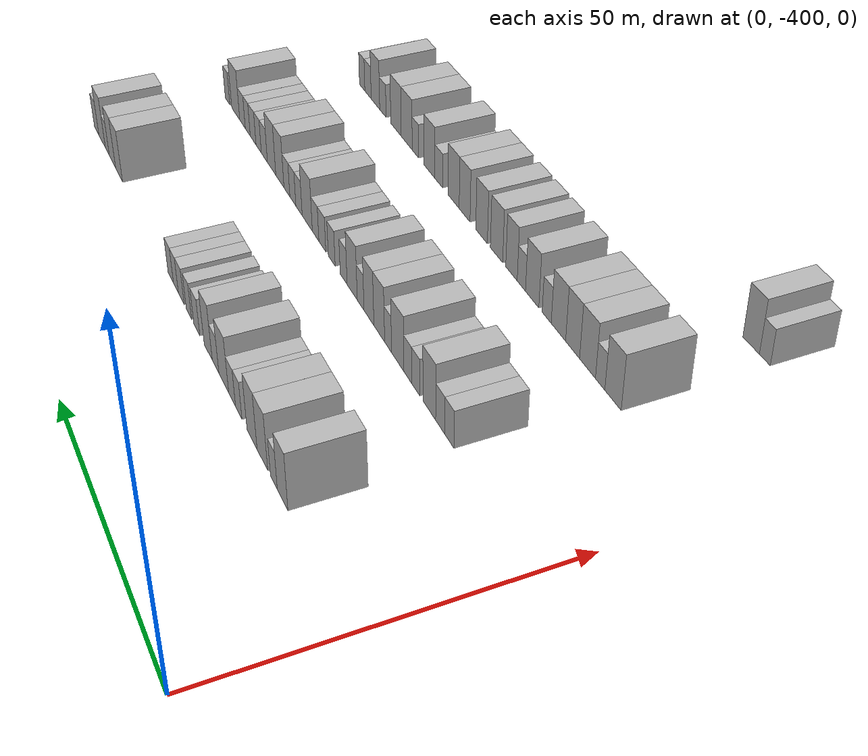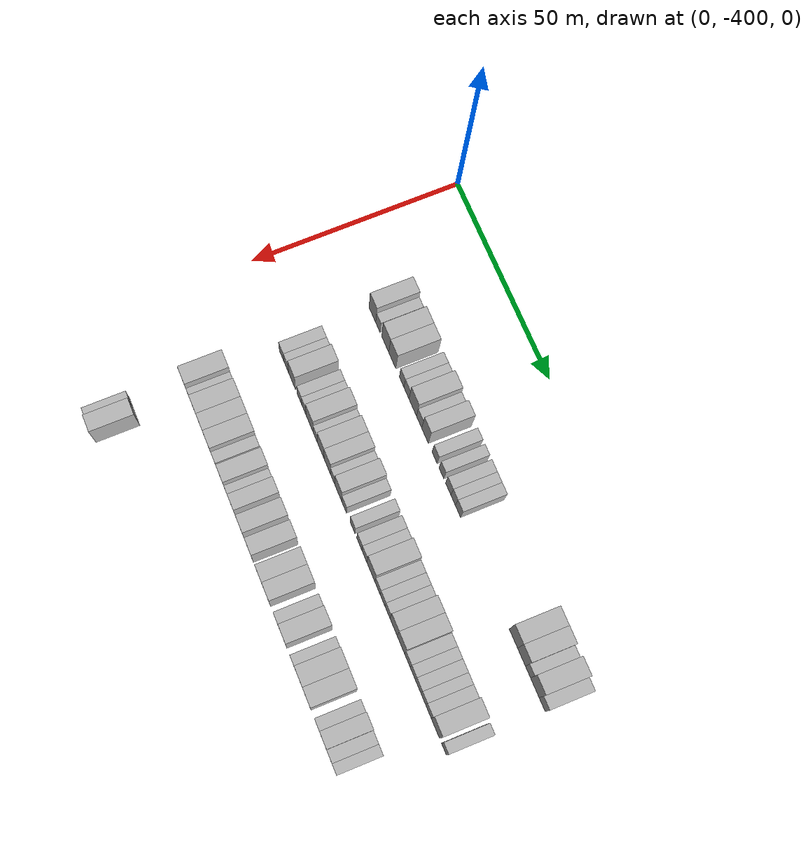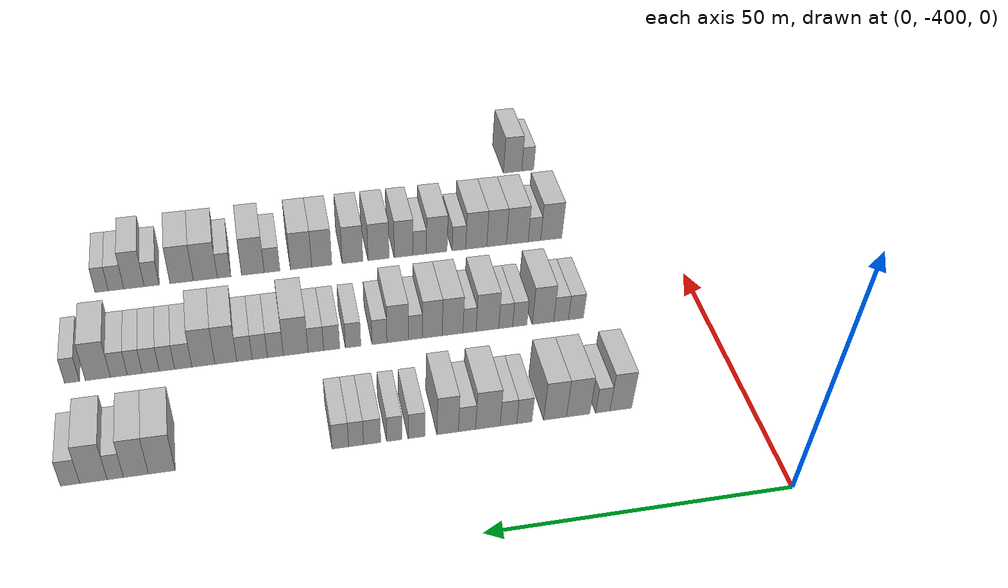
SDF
<sdf version="1.6">
 <world name="default">
  <model name="building_1">
   <static>1</static>
   <pose>25.0000 -378.1050 0 0.000000 0.000000 0.000000</pose>
   <link name="link">
    <pose>0 0 4.50 0 0 0</pose>
    <collision name="collision"><geometry><box><size>10.0000 3.7900 9.0000</size></box></geometry></collision>
    <visual name="visual">
     <cast_shadows>0</cast_shadows>
     <geometry><box><size>10.0000 3.7900 9.0000</size></box></geometry>
     <material>
      <script>
       <uri>model://HANNAS_wall/materials/scripts</uri>
       <uri>model://HANNAS_wall/materials/textures</uri>
       <name>vrc/HANNAS_wall</name>
      </script>
     </material>
    </visual>
   </link>
  </model>
  <model name="building_2">
   <static>1</static>
   <pose>25.0000 -374.9689 0 0.000000 0.000000 0.000000</pose>
   <link name="link">
    <pose>0 0 3.00 0 0 0</pose>
    <collision name="collision"><geometry><box><size>10.0000 2.4822 6.0000</size></box></geometry></collision>
    <visual name="visual">
     <cast_shadows>0</cast_shadows>
     <geometry><box><size>10.0000 2.4822 6.0000</size></box></geometry>
     <material>
      <script>
       <uri>model://HANNAS_wall/materials/scripts</uri>
       <uri>model://HANNAS_wall/materials/textures</uri>
       <name>vrc/HANNAS_wall</name>
      </script>
     </material>
    </visual>
   </link>
  </model>
  <model name="building_3">
   <static>1</static>
   <pose>25.0000 -370.7063 0 0.000000 0.000000 0.000000</pose>
   <link name="link">
    <pose>0 0 4.50 0 0 0</pose>
    <collision name="collision"><geometry><box><size>10.0000 4.0431 9.0000</size></box></geometry></collision>
    <visual name="visual">
     <cast_shadows>0</cast_shadows>
     <geometry><box><size>10.0000 4.0431 9.0000</size></box></geometry>
     <material>
      <script>
       <uri>model://HANNAS_wall/materials/scripts</uri>
       <uri>model://HANNAS_wall/materials/textures</uri>
       <name>vrc/HANNAS_wall</name>
      </script>
     </material>
    </visual>
   </link>
  </model>
  <model name="building_4">
   <static>1</static>
   <pose>25.0000 -366.7180 0 0.000000 0.000000 0.000000</pose>
   <link name="link">
    <pose>0 0 4.50 0 0 0</pose>
    <collision name="collision"><geometry><box><size>10.0000 3.9334 9.0000</size></box></geometry></collision>
    <visual name="visual">
     <cast_shadows>0</cast_shadows>
     <geometry><box><size>10.0000 3.9334 9.0000</size></box></geometry>
     <material>
      <script>
       <uri>model://HANNAS_wall/materials/scripts</uri>
       <uri>model://HANNAS_wall/materials/textures</uri>
       <name>vrc/HANNAS_wall</name>
      </script>
     </material>
    </visual>
   </link>
  </model>
  <model name="building_5">
   <static>1</static>
   <pose>25.0000 -361.4553 0 0.000000 0.000000 0.000000</pose>
   <link name="link">
    <pose>0 0 3.00 0 0 0</pose>
    <collision name="collision"><geometry><box><size>10.0000 2.5922 6.0000</size></box></geometry></collision>
    <visual name="visual">
     <cast_shadows>0</cast_shadows>
     <geometry><box><size>10.0000 2.5922 6.0000</size></box></geometry>
     <material>
      <script>
       <uri>model://HANNAS_wall/materials/scripts</uri>
       <uri>model://HANNAS_wall/materials/textures</uri>
       <name>vrc/HANNAS_wall</name>
      </script>
     </material>
    </visual>
   </link>
  </model>
  <model name="building_6">
   <static>1</static>
   <pose>25.0000 -358.7461 0 0.000000 0.000000 0.000000</pose>
   <link name="link">
    <pose>0 0 3.00 0 0 0</pose>
    <collision name="collision"><geometry><box><size>10.0000 2.8261 6.0000</size></box></geometry></collision>
    <visual name="visual">
     <cast_shadows>0</cast_shadows>
     <geometry><box><size>10.0000 2.8261 6.0000</size></box></geometry>
     <material>
      <script>
       <uri>model://HANNAS_wall/materials/scripts</uri>
       <uri>model://HANNAS_wall/materials/textures</uri>
       <name>vrc/HANNAS_wall</name>
      </script>
     </material>
    </visual>
   </link>
  </model>
  <model name="building_7">
   <static>1</static>
   <pose>25.0000 -355.2564 0 0.000000 0.000000 0.000000</pose>
   <link name="link">
    <pose>0 0 4.50 0 0 0</pose>
    <collision name="collision"><geometry><box><size>10.0000 4.1533 9.0000</size></box></geometry></collision>
    <visual name="visual">
     <cast_shadows>0</cast_shadows>
     <geometry><box><size>10.0000 4.1533 9.0000</size></box></geometry>
     <material>
      <script>
       <uri>model://HANNAS_wall/materials/scripts</uri>
       <uri>model://HANNAS_wall/materials/textures</uri>
       <name>vrc/HANNAS_wall</name>
      </script>
     </material>
    </visual>
   </link>
  </model>
  <model name="building_8">
   <static>1</static>
   <pose>25.0000 -351.7290 0 0.000000 0.000000 0.000000</pose>
   <link name="link">
    <pose>0 0 3.00 0 0 0</pose>
    <collision name="collision"><geometry><box><size>10.0000 2.9015 6.0000</size></box></geometry></collision>
    <visual name="visual">
     <cast_shadows>0</cast_shadows>
     <geometry><box><size>10.0000 2.9015 6.0000</size></box></geometry>
     <material>
      <script>
       <uri>model://HANNAS_wall/materials/scripts</uri>
       <uri>model://HANNAS_wall/materials/textures</uri>
       <name>vrc/HANNAS_wall</name>
      </script>
     </material>
    </visual>
   </link>
  </model>
  <model name="building_9">
   <static>1</static>
   <pose>25.0000 -348.4734 0 0.000000 0.000000 0.000000</pose>
   <link name="link">
    <pose>0 0 4.50 0 0 0</pose>
    <collision name="collision"><geometry><box><size>10.0000 3.6097 9.0000</size></box></geometry></collision>
    <visual name="visual">
     <cast_shadows>0</cast_shadows>
     <geometry><box><size>10.0000 3.6097 9.0000</size></box></geometry>
     <material>
      <script>
       <uri>model://HANNAS_wall/materials/scripts</uri>
       <uri>model://HANNAS_wall/materials/textures</uri>
       <name>vrc/HANNAS_wall</name>
      </script>
     </material>
    </visual>
   </link>
  </model>
  <model name="building_10">
   <static>1</static>
   <pose>25.0000 -343.2628 0 0.000000 0.000000 0.000000</pose>
   <link name="link">
    <pose>0 0 3.00 0 0 0</pose>
    <collision name="collision"><geometry><box><size>10.0000 2.8115 6.0000</size></box></geometry></collision>
    <visual name="visual">
     <cast_shadows>0</cast_shadows>
     <geometry><box><size>10.0000 2.8115 6.0000</size></box></geometry>
     <material>
      <script>
       <uri>model://HANNAS_wall/materials/scripts</uri>
       <uri>model://HANNAS_wall/materials/textures</uri>
       <name>vrc/HANNAS_wall</name>
      </script>
     </material>
    </visual>
   </link>
  </model>
  <model name="building_11">
   <static>1</static>
   <pose>25.0000 -339.5802 0 0.000000 0.000000 0.000000</pose>
   <link name="link">
    <pose>0 0 3.00 0 0 0</pose>
    <collision name="collision"><geometry><box><size>10.0000 2.5537 6.0000</size></box></geometry></collision>
    <visual name="visual">
     <cast_shadows>0</cast_shadows>
     <geometry><box><size>10.0000 2.5537 6.0000</size></box></geometry>
     <material>
      <script>
       <uri>model://HANNAS_wall/materials/scripts</uri>
       <uri>model://HANNAS_wall/materials/textures</uri>
       <name>vrc/HANNAS_wall</name>
      </script>
     </material>
    </visual>
   </link>
  </model>
  <model name="building_12">
   <static>1</static>
   <pose>25.0000 -335.8862 0 0.000000 0.000000 0.000000</pose>
   <link name="link">
    <pose>0 0 3.00 0 0 0</pose>
    <collision name="collision"><geometry><box><size>10.0000 2.8342 6.0000</size></box></geometry></collision>
    <visual name="visual">
     <cast_shadows>0</cast_shadows>
     <geometry><box><size>10.0000 2.8342 6.0000</size></box></geometry>
     <material>
      <script>
       <uri>model://HANNAS_wall/materials/scripts</uri>
       <uri>model://HANNAS_wall/materials/textures</uri>
       <name>vrc/HANNAS_wall</name>
      </script>
     </material>
    </visual>
   </link>
  </model>
  <model name="building_13">
   <static>1</static>
   <pose>25.0000 -333.2497 0 0.000000 0.000000 0.000000</pose>
   <link name="link">
    <pose>0 0 3.00 0 0 0</pose>
    <collision name="collision"><geometry><box><size>10.0000 2.4389 6.0000</size></box></geometry></collision>
    <visual name="visual">
     <cast_shadows>0</cast_shadows>
     <geometry><box><size>10.0000 2.4389 6.0000</size></box></geometry>
     <material>
      <script>
       <uri>model://HANNAS_wall/materials/scripts</uri>
       <uri>model://HANNAS_wall/materials/textures</uri>
       <name>vrc/HANNAS_wall</name>
      </script>
     </material>
    </visual>
   </link>
  </model>
  <model name="building_14">
   <static>1</static>
   <pose>25.0000 -330.6634 0 0.000000 0.000000 0.000000</pose>
   <link name="link">
    <pose>0 0 3.00 0 0 0</pose>
    <collision name="collision"><geometry><box><size>10.0000 2.7336 6.0000</size></box></geometry></collision>
    <visual name="visual">
     <cast_shadows>0</cast_shadows>
     <geometry><box><size>10.0000 2.7336 6.0000</size></box></geometry>
     <material>
      <script>
       <uri>model://HANNAS_wall/materials/scripts</uri>
       <uri>model://HANNAS_wall/materials/textures</uri>
       <name>vrc/HANNAS_wall</name>
      </script>
     </material>
    </visual>
   </link>
  </model>
  <model name="building_15">
   <static>1</static>
   <pose>25.0000 -301.9476 0 0.000000 0.000000 0.000000</pose>
   <link name="link">
    <pose>0 0 4.50 0 0 0</pose>
    <collision name="collision"><geometry><box><size>10.0000 4.2327 9.0000</size></box></geometry></collision>
    <visual name="visual">
     <cast_shadows>0</cast_shadows>
     <geometry><box><size>10.0000 4.2327 9.0000</size></box></geometry>
     <material>
      <script>
       <uri>model://HANNAS_wall/materials/scripts</uri>
       <uri>model://HANNAS_wall/materials/textures</uri>
       <name>vrc/HANNAS_wall</name>
      </script>
     </material>
    </visual>
   </link>
  </model>
  <model name="building_16">
   <static>1</static>
   <pose>25.0000 -297.8743 0 0.000000 0.000000 0.000000</pose>
   <link name="link">
    <pose>0 0 4.50 0 0 0</pose>
    <collision name="collision"><geometry><box><size>10.0000 3.9139 9.0000</size></box></geometry></collision>
    <visual name="visual">
     <cast_shadows>0</cast_shadows>
     <geometry><box><size>10.0000 3.9139 9.0000</size></box></geometry>
     <material>
      <script>
       <uri>model://HANNAS_wall/materials/scripts</uri>
       <uri>model://HANNAS_wall/materials/textures</uri>
       <name>vrc/HANNAS_wall</name>
      </script>
     </material>
    </visual>
   </link>
  </model>
  <model name="building_17">
   <static>1</static>
   <pose>25.0000 -294.6431 0 0.000000 0.000000 0.000000</pose>
   <link name="link">
    <pose>0 0 3.00 0 0 0</pose>
    <collision name="collision"><geometry><box><size>10.0000 2.5486 6.0000</size></box></geometry></collision>
    <visual name="visual">
     <cast_shadows>0</cast_shadows>
     <geometry><box><size>10.0000 2.5486 6.0000</size></box></geometry>
     <material>
      <script>
       <uri>model://HANNAS_wall/materials/scripts</uri>
       <uri>model://HANNAS_wall/materials/textures</uri>
       <name>vrc/HANNAS_wall</name>
      </script>
     </material>
    </visual>
   </link>
  </model>
  <model name="building_18">
   <static>1</static>
   <pose>25.0000 -291.2424 0 0.000000 0.000000 0.000000</pose>
   <link name="link">
    <pose>0 0 4.50 0 0 0</pose>
    <collision name="collision"><geometry><box><size>10.0000 4.2528 9.0000</size></box></geometry></collision>
    <visual name="visual">
     <cast_shadows>0</cast_shadows>
     <geometry><box><size>10.0000 4.2528 9.0000</size></box></geometry>
     <material>
      <script>
       <uri>model://HANNAS_wall/materials/scripts</uri>
       <uri>model://HANNAS_wall/materials/textures</uri>
       <name>vrc/HANNAS_wall</name>
      </script>
     </material>
    </visual>
   </link>
  </model>
  <model name="building_19">
   <static>1</static>
   <pose>25.0000 -287.6211 0 0.000000 0.000000 0.000000</pose>
   <link name="link">
    <pose>0 0 3.00 0 0 0</pose>
    <collision name="collision"><geometry><box><size>10.0000 2.9899 6.0000</size></box></geometry></collision>
    <visual name="visual">
     <cast_shadows>0</cast_shadows>
     <geometry><box><size>10.0000 2.9899 6.0000</size></box></geometry>
     <material>
      <script>
       <uri>model://HANNAS_wall/materials/scripts</uri>
       <uri>model://HANNAS_wall/materials/textures</uri>
       <name>vrc/HANNAS_wall</name>
      </script>
     </material>
    </visual>
   </link>
  </model>
  <model name="building_183">
   <static>1</static>
   <pose>47.0000 -376.5929 0 0.000000 0.000000 0.000000</pose>
   <link name="link">
    <pose>0 0 3.00 0 0 0</pose>
    <collision name="collision"><geometry><box><size>10.0000 2.8141 6.0000</size></box></geometry></collision>
    <visual name="visual">
     <cast_shadows>0</cast_shadows>
     <geometry><box><size>10.0000 2.8141 6.0000</size></box></geometry>
     <material>
      <script>
       <uri>model://HANNAS_wall/materials/scripts</uri>
       <uri>model://HANNAS_wall/materials/textures</uri>
       <name>vrc/HANNAS_wall</name>
      </script>
     </material>
    </visual>
   </link>
  </model>
  <model name="building_184">
   <static>1</static>
   <pose>47.0000 -373.8122 0 0.000000 0.000000 0.000000</pose>
   <link name="link">
    <pose>0 0 3.00 0 0 0</pose>
    <collision name="collision"><geometry><box><size>10.0000 2.7474 6.0000</size></box></geometry></collision>
    <visual name="visual">
     <cast_shadows>0</cast_shadows>
     <geometry><box><size>10.0000 2.7474 6.0000</size></box></geometry>
     <material>
      <script>
       <uri>model://HANNAS_wall/materials/scripts</uri>
       <uri>model://HANNAS_wall/materials/textures</uri>
       <name>vrc/HANNAS_wall</name>
      </script>
     </material>
    </visual>
   </link>
  </model>
  <model name="building_185">
   <static>1</static>
   <pose>47.0000 -370.4406 0 0.000000 0.000000 0.000000</pose>
   <link name="link">
    <pose>0 0 4.50 0 0 0</pose>
    <collision name="collision"><geometry><box><size>10.0000 3.9957 9.0000</size></box></geometry></collision>
    <visual name="visual">
     <cast_shadows>0</cast_shadows>
     <geometry><box><size>10.0000 3.9957 9.0000</size></box></geometry>
     <material>
      <script>
       <uri>model://HANNAS_wall/materials/scripts</uri>
       <uri>model://HANNAS_wall/materials/textures</uri>
       <name>vrc/HANNAS_wall</name>
      </script>
     </material>
    </visual>
   </link>
  </model>
  <model name="building_186">
   <static>1</static>
   <pose>47.0000 -366.1176 0 0.000000 0.000000 0.000000</pose>
   <link name="link">
    <pose>0 0 3.00 0 0 0</pose>
    <collision name="collision"><geometry><box><size>10.0000 2.6503 6.0000</size></box></geometry></collision>
    <visual name="visual">
     <cast_shadows>0</cast_shadows>
     <geometry><box><size>10.0000 2.6503 6.0000</size></box></geometry>
     <material>
      <script>
       <uri>model://HANNAS_wall/materials/scripts</uri>
       <uri>model://HANNAS_wall/materials/textures</uri>
       <name>vrc/HANNAS_wall</name>
      </script>
     </material>
    </visual>
   </link>
  </model>
  <model name="building_187">
   <static>1</static>
   <pose>47.0000 -363.5154 0 0.000000 0.000000 0.000000</pose>
   <link name="link">
    <pose>0 0 3.00 0 0 0</pose>
    <collision name="collision"><geometry><box><size>10.0000 2.5540 6.0000</size></box></geometry></collision>
    <visual name="visual">
     <cast_shadows>0</cast_shadows>
     <geometry><box><size>10.0000 2.5540 6.0000</size></box></geometry>
     <material>
      <script>
       <uri>model://HANNAS_wall/materials/scripts</uri>
       <uri>model://HANNAS_wall/materials/textures</uri>
       <name>vrc/HANNAS_wall</name>
      </script>
     </material>
    </visual>
   </link>
  </model>
  <model name="building_188">
   <static>1</static>
   <pose>47.0000 -360.1445 0 0.000000 0.000000 0.000000</pose>
   <link name="link">
    <pose>0 0 4.50 0 0 0</pose>
    <collision name="collision"><geometry><box><size>10.0000 4.1879 9.0000</size></box></geometry></collision>
    <visual name="visual">
     <cast_shadows>0</cast_shadows>
     <geometry><box><size>10.0000 4.1879 9.0000</size></box></geometry>
     <material>
      <script>
       <uri>model://HANNAS_wall/materials/scripts</uri>
       <uri>model://HANNAS_wall/materials/textures</uri>
       <name>vrc/HANNAS_wall</name>
      </script>
     </material>
    </visual>
   </link>
  </model>
  <model name="building_189">
   <static>1</static>
   <pose>47.0000 -356.8498 0 0.000000 0.000000 0.000000</pose>
   <link name="link">
    <pose>0 0 3.00 0 0 0</pose>
    <collision name="collision"><geometry><box><size>10.0000 2.4014 6.0000</size></box></geometry></collision>
    <visual name="visual">
     <cast_shadows>0</cast_shadows>
     <geometry><box><size>10.0000 2.4014 6.0000</size></box></geometry>
     <material>
      <script>
       <uri>model://HANNAS_wall/materials/scripts</uri>
       <uri>model://HANNAS_wall/materials/textures</uri>
       <name>vrc/HANNAS_wall</name>
      </script>
     </material>
    </visual>
   </link>
  </model>
  <model name="building_190">
   <static>1</static>
   <pose>47.0000 -353.7454 0 0.000000 0.000000 0.000000</pose>
   <link name="link">
    <pose>0 0 4.50 0 0 0</pose>
    <collision name="collision"><geometry><box><size>10.0000 3.8075 9.0000</size></box></geometry></collision>
    <visual name="visual">
     <cast_shadows>0</cast_shadows>
     <geometry><box><size>10.0000 3.8075 9.0000</size></box></geometry>
     <material>
      <script>
       <uri>model://HANNAS_wall/materials/scripts</uri>
       <uri>model://HANNAS_wall/materials/textures</uri>
       <name>vrc/HANNAS_wall</name>
      </script>
     </material>
    </visual>
   </link>
  </model>
  <model name="building_191">
   <static>1</static>
   <pose>47.0000 -350.0384 0 0.000000 0.000000 0.000000</pose>
   <link name="link">
    <pose>0 0 4.50 0 0 0</pose>
    <collision name="collision"><geometry><box><size>10.0000 3.6065 9.0000</size></box></geometry></collision>
    <visual name="visual">
     <cast_shadows>0</cast_shadows>
     <geometry><box><size>10.0000 3.6065 9.0000</size></box></geometry>
     <material>
      <script>
       <uri>model://HANNAS_wall/materials/scripts</uri>
       <uri>model://HANNAS_wall/materials/textures</uri>
       <name>vrc/HANNAS_wall</name>
      </script>
     </material>
    </visual>
   </link>
  </model>
  <model name="building_192">
   <static>1</static>
   <pose>47.0000 -346.9836 0 0.000000 0.000000 0.000000</pose>
   <link name="link">
    <pose>0 0 3.00 0 0 0</pose>
    <collision name="collision"><geometry><box><size>10.0000 2.5031 6.0000</size></box></geometry></collision>
    <visual name="visual">
     <cast_shadows>0</cast_shadows>
     <geometry><box><size>10.0000 2.5031 6.0000</size></box></geometry>
     <material>
      <script>
       <uri>model://HANNAS_wall/materials/scripts</uri>
       <uri>model://HANNAS_wall/materials/textures</uri>
       <name>vrc/HANNAS_wall</name>
      </script>
     </material>
    </visual>
   </link>
  </model>
  <model name="building_193">
   <static>1</static>
   <pose>47.0000 -343.7967 0 0.000000 0.000000 0.000000</pose>
   <link name="link">
    <pose>0 0 4.50 0 0 0</pose>
    <collision name="collision"><geometry><box><size>10.0000 3.8705 9.0000</size></box></geometry></collision>
    <visual name="visual">
     <cast_shadows>0</cast_shadows>
     <geometry><box><size>10.0000 3.8705 9.0000</size></box></geometry>
     <material>
      <script>
       <uri>model://HANNAS_wall/materials/scripts</uri>
       <uri>model://HANNAS_wall/materials/textures</uri>
       <name>vrc/HANNAS_wall</name>
      </script>
     </material>
    </visual>
   </link>
  </model>
  <model name="building_194">
   <static>1</static>
   <pose>47.0000 -340.5161 0 0.000000 0.000000 0.000000</pose>
   <link name="link">
    <pose>0 0 3.00 0 0 0</pose>
    <collision name="collision"><geometry><box><size>10.0000 2.6908 6.0000</size></box></geometry></collision>
    <visual name="visual">
     <cast_shadows>0</cast_shadows>
     <geometry><box><size>10.0000 2.6908 6.0000</size></box></geometry>
     <material>
      <script>
       <uri>model://HANNAS_wall/materials/scripts</uri>
       <uri>model://HANNAS_wall/materials/textures</uri>
       <name>vrc/HANNAS_wall</name>
      </script>
     </material>
    </visual>
   </link>
  </model>
  <model name="building_195">
   <static>1</static>
   <pose>47.0000 -335.7900 0 0.000000 0.000000 0.000000</pose>
   <link name="link">
    <pose>0 0 3.00 0 0 0</pose>
    <collision name="collision"><geometry><box><size>10.0000 2.7614 6.0000</size></box></geometry></collision>
    <visual name="visual">
     <cast_shadows>0</cast_shadows>
     <geometry><box><size>10.0000 2.7614 6.0000</size></box></geometry>
     <material>
      <script>
       <uri>model://HANNAS_wall/materials/scripts</uri>
       <uri>model://HANNAS_wall/materials/textures</uri>
       <name>vrc/HANNAS_wall</name>
      </script>
     </material>
    </visual>
   </link>
  </model>
  <model name="building_196">
   <static>1</static>
   <pose>47.0000 -331.9772 0 0.000000 0.000000 0.000000</pose>
   <link name="link">
    <pose>0 0 3.00 0 0 0</pose>
    <collision name="collision"><geometry><box><size>10.0000 2.8640 6.0000</size></box></geometry></collision>
    <visual name="visual">
     <cast_shadows>0</cast_shadows>
     <geometry><box><size>10.0000 2.8640 6.0000</size></box></geometry>
     <material>
      <script>
       <uri>model://HANNAS_wall/materials/scripts</uri>
       <uri>model://HANNAS_wall/materials/textures</uri>
       <name>vrc/HANNAS_wall</name>
      </script>
     </material>
    </visual>
   </link>
  </model>
  <model name="building_197">
   <static>1</static>
   <pose>47.0000 -329.1670 0 0.000000 0.000000 0.000000</pose>
   <link name="link">
    <pose>0 0 3.00 0 0 0</pose>
    <collision name="collision"><geometry><box><size>10.0000 2.7566 6.0000</size></box></geometry></collision>
    <visual name="visual">
     <cast_shadows>0</cast_shadows>
     <geometry><box><size>10.0000 2.7566 6.0000</size></box></geometry>
     <material>
      <script>
       <uri>model://HANNAS_wall/materials/scripts</uri>
       <uri>model://HANNAS_wall/materials/textures</uri>
       <name>vrc/HANNAS_wall</name>
      </script>
     </material>
    </visual>
   </link>
  </model>
  <model name="building_198">
   <static>1</static>
   <pose>47.0000 -325.6067 0 0.000000 0.000000 0.000000</pose>
   <link name="link">
    <pose>0 0 4.50 0 0 0</pose>
    <collision name="collision"><geometry><box><size>10.0000 4.3640 9.0000</size></box></geometry></collision>
    <visual name="visual">
     <cast_shadows>0</cast_shadows>
     <geometry><box><size>10.0000 4.3640 9.0000</size></box></geometry>
     <material>
      <script>
       <uri>model://HANNAS_wall/materials/scripts</uri>
       <uri>model://HANNAS_wall/materials/textures</uri>
       <name>vrc/HANNAS_wall</name>
      </script>
     </material>
    </visual>
   </link>
  </model>
  <model name="building_199">
   <static>1</static>
   <pose>47.0000 -322.0253 0 0.000000 0.000000 0.000000</pose>
   <link name="link">
    <pose>0 0 3.00 0 0 0</pose>
    <collision name="collision"><geometry><box><size>10.0000 2.7988 6.0000</size></box></geometry></collision>
    <visual name="visual">
     <cast_shadows>0</cast_shadows>
     <geometry><box><size>10.0000 2.7988 6.0000</size></box></geometry>
     <material>
      <script>
       <uri>model://HANNAS_wall/materials/scripts</uri>
       <uri>model://HANNAS_wall/materials/textures</uri>
       <name>vrc/HANNAS_wall</name>
      </script>
     </material>
    </visual>
   </link>
  </model>
  <model name="building_200">
   <static>1</static>
   <pose>47.0000 -319.2879 0 0.000000 0.000000 0.000000</pose>
   <link name="link">
    <pose>0 0 3.00 0 0 0</pose>
    <collision name="collision"><geometry><box><size>10.0000 2.6759 6.0000</size></box></geometry></collision>
    <visual name="visual">
     <cast_shadows>0</cast_shadows>
     <geometry><box><size>10.0000 2.6759 6.0000</size></box></geometry>
     <material>
      <script>
       <uri>model://HANNAS_wall/materials/scripts</uri>
       <uri>model://HANNAS_wall/materials/textures</uri>
       <name>vrc/HANNAS_wall</name>
      </script>
     </material>
    </visual>
   </link>
  </model>
  <model name="building_201">
   <static>1</static>
   <pose>47.0000 -316.6080 0 0.000000 0.000000 0.000000</pose>
   <link name="link">
    <pose>0 0 3.00 0 0 0</pose>
    <collision name="collision"><geometry><box><size>10.0000 2.6839 6.0000</size></box></geometry></collision>
    <visual name="visual">
     <cast_shadows>0</cast_shadows>
     <geometry><box><size>10.0000 2.6839 6.0000</size></box></geometry>
     <material>
      <script>
       <uri>model://HANNAS_wall/materials/scripts</uri>
       <uri>model://HANNAS_wall/materials/textures</uri>
       <name>vrc/HANNAS_wall</name>
      </script>
     </material>
    </visual>
   </link>
  </model>
  <model name="building_202">
   <static>1</static>
   <pose>47.0000 -313.3685 0 0.000000 0.000000 0.000000</pose>
   <link name="link">
    <pose>0 0 4.50 0 0 0</pose>
    <collision name="collision"><geometry><box><size>10.0000 3.7951 9.0000</size></box></geometry></collision>
    <visual name="visual">
     <cast_shadows>0</cast_shadows>
     <geometry><box><size>10.0000 3.7951 9.0000</size></box></geometry>
     <material>
      <script>
       <uri>model://HANNAS_wall/materials/scripts</uri>
       <uri>model://HANNAS_wall/materials/textures</uri>
       <name>vrc/HANNAS_wall</name>
      </script>
     </material>
    </visual>
   </link>
  </model>
  <model name="building_203">
   <static>1</static>
   <pose>47.0000 -309.4746 0 0.000000 0.000000 0.000000</pose>
   <link name="link">
    <pose>0 0 4.50 0 0 0</pose>
    <collision name="collision"><geometry><box><size>10.0000 3.9927 9.0000</size></box></geometry></collision>
    <visual name="visual">
     <cast_shadows>0</cast_shadows>
     <geometry><box><size>10.0000 3.9927 9.0000</size></box></geometry>
     <material>
      <script>
       <uri>model://HANNAS_wall/materials/scripts</uri>
       <uri>model://HANNAS_wall/materials/textures</uri>
       <name>vrc/HANNAS_wall</name>
      </script>
     </material>
    </visual>
   </link>
  </model>
  <model name="building_204">
   <static>1</static>
   <pose>47.0000 -306.0009 0 0.000000 0.000000 0.000000</pose>
   <link name="link">
    <pose>0 0 3.00 0 0 0</pose>
    <collision name="collision"><geometry><box><size>10.0000 2.9547 6.0000</size></box></geometry></collision>
    <visual name="visual">
     <cast_shadows>0</cast_shadows>
     <geometry><box><size>10.0000 2.9547 6.0000</size></box></geometry>
     <material>
      <script>
       <uri>model://HANNAS_wall/materials/scripts</uri>
       <uri>model://HANNAS_wall/materials/textures</uri>
       <name>vrc/HANNAS_wall</name>
      </script>
     </material>
    </visual>
   </link>
  </model>
  <model name="building_205">
   <static>1</static>
   <pose>47.0000 -303.2029 0 0.000000 0.000000 0.000000</pose>
   <link name="link">
    <pose>0 0 3.00 0 0 0</pose>
    <collision name="collision"><geometry><box><size>10.0000 2.6412 6.0000</size></box></geometry></collision>
    <visual name="visual">
     <cast_shadows>0</cast_shadows>
     <geometry><box><size>10.0000 2.6412 6.0000</size></box></geometry>
     <material>
      <script>
       <uri>model://HANNAS_wall/materials/scripts</uri>
       <uri>model://HANNAS_wall/materials/textures</uri>
       <name>vrc/HANNAS_wall</name>
      </script>
     </material>
    </visual>
   </link>
  </model>
  <model name="building_206">
   <static>1</static>
   <pose>47.0000 -300.4270 0 0.000000 0.000000 0.000000</pose>
   <link name="link">
    <pose>0 0 3.00 0 0 0</pose>
    <collision name="collision"><geometry><box><size>10.0000 2.9106 6.0000</size></box></geometry></collision>
    <visual name="visual">
     <cast_shadows>0</cast_shadows>
     <geometry><box><size>10.0000 2.9106 6.0000</size></box></geometry>
     <material>
      <script>
       <uri>model://HANNAS_wall/materials/scripts</uri>
       <uri>model://HANNAS_wall/materials/textures</uri>
       <name>vrc/HANNAS_wall</name>
      </script>
     </material>
    </visual>
   </link>
  </model>
  <model name="building_207">
   <static>1</static>
   <pose>47.0000 -297.7063 0 0.000000 0.000000 0.000000</pose>
   <link name="link">
    <pose>0 0 3.00 0 0 0</pose>
    <collision name="collision"><geometry><box><size>10.0000 2.5308 6.0000</size></box></geometry></collision>
    <visual name="visual">
     <cast_shadows>0</cast_shadows>
     <geometry><box><size>10.0000 2.5308 6.0000</size></box></geometry>
     <material>
      <script>
       <uri>model://HANNAS_wall/materials/scripts</uri>
       <uri>model://HANNAS_wall/materials/textures</uri>
       <name>vrc/HANNAS_wall</name>
      </script>
     </material>
    </visual>
   </link>
  </model>
  <model name="building_208">
   <static>1</static>
   <pose>47.0000 -294.9989 0 0.000000 0.000000 0.000000</pose>
   <link name="link">
    <pose>0 0 3.00 0 0 0</pose>
    <collision name="collision"><geometry><box><size>10.0000 2.8839 6.0000</size></box></geometry></collision>
    <visual name="visual">
     <cast_shadows>0</cast_shadows>
     <geometry><box><size>10.0000 2.8839 6.0000</size></box></geometry>
     <material>
      <script>
       <uri>model://HANNAS_wall/materials/scripts</uri>
       <uri>model://HANNAS_wall/materials/textures</uri>
       <name>vrc/HANNAS_wall</name>
      </script>
     </material>
    </visual>
   </link>
  </model>
  <model name="building_209">
   <static>1</static>
   <pose>47.0000 -291.4283 0 0.000000 0.000000 0.000000</pose>
   <link name="link">
    <pose>0 0 4.50 0 0 0</pose>
    <collision name="collision"><geometry><box><size>10.0000 4.2573 9.0000</size></box></geometry></collision>
    <visual name="visual">
     <cast_shadows>0</cast_shadows>
     <geometry><box><size>10.0000 4.2573 9.0000</size></box></geometry>
     <material>
      <script>
       <uri>model://HANNAS_wall/materials/scripts</uri>
       <uri>model://HANNAS_wall/materials/textures</uri>
       <name>vrc/HANNAS_wall</name>
      </script>
     </material>
    </visual>
   </link>
  </model>
  <model name="building_210">
   <static>1</static>
   <pose>47.0000 -287.0543 0 0.000000 0.000000 0.000000</pose>
   <link name="link">
    <pose>0 0 3.00 0 0 0</pose>
    <collision name="collision"><geometry><box><size>10.0000 2.4906 6.0000</size></box></geometry></collision>
    <visual name="visual">
     <cast_shadows>0</cast_shadows>
     <geometry><box><size>10.0000 2.4906 6.0000</size></box></geometry>
     <material>
      <script>
       <uri>model://HANNAS_wall/materials/scripts</uri>
       <uri>model://HANNAS_wall/materials/textures</uri>
       <name>vrc/HANNAS_wall</name>
      </script>
     </material>
    </visual>
   </link>
  </model>
  <model name="building_380">
   <static>1</static>
   <pose>69.0000 -377.8755 0 0.000000 0.000000 0.000000</pose>
   <link name="link">
    <pose>0 0 4.50 0 0 0</pose>
    <collision name="collision"><geometry><box><size>10.0000 4.2490 9.0000</size></box></geometry></collision>
    <visual name="visual">
     <cast_shadows>0</cast_shadows>
     <geometry><box><size>10.0000 4.2490 9.0000</size></box></geometry>
     <material>
      <script>
       <uri>model://HANNAS_wall/materials/scripts</uri>
       <uri>model://HANNAS_wall/materials/textures</uri>
       <name>vrc/HANNAS_wall</name>
      </script>
     </material>
    </visual>
   </link>
  </model>
  <model name="building_381">
   <static>1</static>
   <pose>69.0000 -374.5032 0 0.000000 0.000000 0.000000</pose>
   <link name="link">
    <pose>0 0 3.00 0 0 0</pose>
    <collision name="collision"><geometry><box><size>10.0000 2.4957 6.0000</size></box></geometry></collision>
    <visual name="visual">
     <cast_shadows>0</cast_shadows>
     <geometry><box><size>10.0000 2.4957 6.0000</size></box></geometry>
     <material>
      <script>
       <uri>model://HANNAS_wall/materials/scripts</uri>
       <uri>model://HANNAS_wall/materials/textures</uri>
       <name>vrc/HANNAS_wall</name>
      </script>
     </material>
    </visual>
   </link>
  </model>
  <model name="building_382">
   <static>1</static>
   <pose>69.0000 -371.0847 0 0.000000 0.000000 0.000000</pose>
   <link name="link">
    <pose>0 0 4.50 0 0 0</pose>
    <collision name="collision"><geometry><box><size>10.0000 4.3414 9.0000</size></box></geometry></collision>
    <visual name="visual">
     <cast_shadows>0</cast_shadows>
     <geometry><box><size>10.0000 4.3414 9.0000</size></box></geometry>
     <material>
      <script>
       <uri>model://HANNAS_wall/materials/scripts</uri>
       <uri>model://HANNAS_wall/materials/textures</uri>
       <name>vrc/HANNAS_wall</name>
      </script>
     </material>
    </visual>
   </link>
  </model>
  <model name="building_383">
   <static>1</static>
   <pose>69.0000 -366.9522 0 0.000000 0.000000 0.000000</pose>
   <link name="link">
    <pose>0 0 4.50 0 0 0</pose>
    <collision name="collision"><geometry><box><size>10.0000 3.9236 9.0000</size></box></geometry></collision>
    <visual name="visual">
     <cast_shadows>0</cast_shadows>
     <geometry><box><size>10.0000 3.9236 9.0000</size></box></geometry>
     <material>
      <script>
       <uri>model://HANNAS_wall/materials/scripts</uri>
       <uri>model://HANNAS_wall/materials/textures</uri>
       <name>vrc/HANNAS_wall</name>
      </script>
     </material>
    </visual>
   </link>
  </model>
  <model name="building_384">
   <static>1</static>
   <pose>69.0000 -362.9010 0 0.000000 0.000000 0.000000</pose>
   <link name="link">
    <pose>0 0 4.50 0 0 0</pose>
    <collision name="collision"><geometry><box><size>10.0000 4.1787 9.0000</size></box></geometry></collision>
    <visual name="visual">
     <cast_shadows>0</cast_shadows>
     <geometry><box><size>10.0000 4.1787 9.0000</size></box></geometry>
     <material>
      <script>
       <uri>model://HANNAS_wall/materials/scripts</uri>
       <uri>model://HANNAS_wall/materials/textures</uri>
       <name>vrc/HANNAS_wall</name>
      </script>
     </material>
    </visual>
   </link>
  </model>
  <model name="building_385">
   <static>1</static>
   <pose>69.0000 -359.4708 0 0.000000 0.000000 0.000000</pose>
   <link name="link">
    <pose>0 0 3.00 0 0 0</pose>
    <collision name="collision"><geometry><box><size>10.0000 2.6817 6.0000</size></box></geometry></collision>
    <visual name="visual">
     <cast_shadows>0</cast_shadows>
     <geometry><box><size>10.0000 2.6817 6.0000</size></box></geometry>
     <material>
      <script>
       <uri>model://HANNAS_wall/materials/scripts</uri>
       <uri>model://HANNAS_wall/materials/textures</uri>
       <name>vrc/HANNAS_wall</name>
      </script>
     </material>
    </visual>
   </link>
  </model>
  <model name="building_386">
   <static>1</static>
   <pose>69.0000 -355.0882 0 0.000000 0.000000 0.000000</pose>
   <link name="link">
    <pose>0 0 4.50 0 0 0</pose>
    <collision name="collision"><geometry><box><size>10.0000 4.0835 9.0000</size></box></geometry></collision>
    <visual name="visual">
     <cast_shadows>0</cast_shadows>
     <geometry><box><size>10.0000 4.0835 9.0000</size></box></geometry>
     <material>
      <script>
       <uri>model://HANNAS_wall/materials/scripts</uri>
       <uri>model://HANNAS_wall/materials/textures</uri>
       <name>vrc/HANNAS_wall</name>
      </script>
     </material>
    </visual>
   </link>
  </model>
  <model name="building_387">
   <static>1</static>
   <pose>69.0000 -351.7425 0 0.000000 0.000000 0.000000</pose>
   <link name="link">
    <pose>0 0 3.00 0 0 0</pose>
    <collision name="collision"><geometry><box><size>10.0000 2.6080 6.0000</size></box></geometry></collision>
    <visual name="visual">
     <cast_shadows>0</cast_shadows>
     <geometry><box><size>10.0000 2.6080 6.0000</size></box></geometry>
     <material>
      <script>
       <uri>model://HANNAS_wall/materials/scripts</uri>
       <uri>model://HANNAS_wall/materials/textures</uri>
       <name>vrc/HANNAS_wall</name>
      </script>
     </material>
    </visual>
   </link>
  </model>
  <model name="building_388">
   <static>1</static>
   <pose>69.0000 -348.6059 0 0.000000 0.000000 0.000000</pose>
   <link name="link">
    <pose>0 0 4.50 0 0 0</pose>
    <collision name="collision"><geometry><box><size>10.0000 3.6652 9.0000</size></box></geometry></collision>
    <visual name="visual">
     <cast_shadows>0</cast_shadows>
     <geometry><box><size>10.0000 3.6652 9.0000</size></box></geometry>
     <material>
      <script>
       <uri>model://HANNAS_wall/materials/scripts</uri>
       <uri>model://HANNAS_wall/materials/textures</uri>
       <name>vrc/HANNAS_wall</name>
      </script>
     </material>
    </visual>
   </link>
  </model>
  <model name="building_389">
   <static>1</static>
   <pose>69.0000 -343.7368 0 0.000000 0.000000 0.000000</pose>
   <link name="link">
    <pose>0 0 4.50 0 0 0</pose>
    <collision name="collision"><geometry><box><size>10.0000 4.0730 9.0000</size></box></geometry></collision>
    <visual name="visual">
     <cast_shadows>0</cast_shadows>
     <geometry><box><size>10.0000 4.0730 9.0000</size></box></geometry>
     <material>
      <script>
       <uri>model://HANNAS_wall/materials/scripts</uri>
       <uri>model://HANNAS_wall/materials/textures</uri>
       <name>vrc/HANNAS_wall</name>
      </script>
     </material>
    </visual>
   </link>
  </model>
  <model name="building_390">
   <static>1</static>
   <pose>69.0000 -338.7135 0 0.000000 0.000000 0.000000</pose>
   <link name="link">
    <pose>0 0 4.50 0 0 0</pose>
    <collision name="collision"><geometry><box><size>10.0000 3.9736 9.0000</size></box></geometry></collision>
    <visual name="visual">
     <cast_shadows>0</cast_shadows>
     <geometry><box><size>10.0000 3.9736 9.0000</size></box></geometry>
     <material>
      <script>
       <uri>model://HANNAS_wall/materials/scripts</uri>
       <uri>model://HANNAS_wall/materials/textures</uri>
       <name>vrc/HANNAS_wall</name>
      </script>
     </material>
    </visual>
   </link>
  </model>
  <model name="building_391">
   <static>1</static>
   <pose>69.0000 -332.7956 0 0.000000 0.000000 0.000000</pose>
   <link name="link">
    <pose>0 0 4.50 0 0 0</pose>
    <collision name="collision"><geometry><box><size>10.0000 3.8622 9.0000</size></box></geometry></collision>
    <visual name="visual">
     <cast_shadows>0</cast_shadows>
     <geometry><box><size>10.0000 3.8622 9.0000</size></box></geometry>
     <material>
      <script>
       <uri>model://HANNAS_wall/materials/scripts</uri>
       <uri>model://HANNAS_wall/materials/textures</uri>
       <name>vrc/HANNAS_wall</name>
      </script>
     </material>
    </visual>
   </link>
  </model>
  <model name="building_392">
   <static>1</static>
   <pose>69.0000 -328.8381 0 0.000000 0.000000 0.000000</pose>
   <link name="link">
    <pose>0 0 4.50 0 0 0</pose>
    <collision name="collision"><geometry><box><size>10.0000 4.0526 9.0000</size></box></geometry></collision>
    <visual name="visual">
     <cast_shadows>0</cast_shadows>
     <geometry><box><size>10.0000 4.0526 9.0000</size></box></geometry>
     <material>
      <script>
       <uri>model://HANNAS_wall/materials/scripts</uri>
       <uri>model://HANNAS_wall/materials/textures</uri>
       <name>vrc/HANNAS_wall</name>
      </script>
     </material>
    </visual>
   </link>
  </model>
  <model name="building_393">
   <static>1</static>
   <pose>69.0000 -323.3308 0 0.000000 0.000000 0.000000</pose>
   <link name="link">
    <pose>0 0 3.00 0 0 0</pose>
    <collision name="collision"><geometry><box><size>10.0000 2.9620 6.0000</size></box></geometry></collision>
    <visual name="visual">
     <cast_shadows>0</cast_shadows>
     <geometry><box><size>10.0000 2.9620 6.0000</size></box></geometry>
     <material>
      <script>
       <uri>model://HANNAS_wall/materials/scripts</uri>
       <uri>model://HANNAS_wall/materials/textures</uri>
       <name>vrc/HANNAS_wall</name>
      </script>
     </material>
    </visual>
   </link>
  </model>
  <model name="building_394">
   <static>1</static>
   <pose>69.0000 -319.7080 0 0.000000 0.000000 0.000000</pose>
   <link name="link">
    <pose>0 0 4.50 0 0 0</pose>
    <collision name="collision"><geometry><box><size>10.0000 4.2837 9.0000</size></box></geometry></collision>
    <visual name="visual">
     <cast_shadows>0</cast_shadows>
     <geometry><box><size>10.0000 4.2837 9.0000</size></box></geometry>
     <material>
      <script>
       <uri>model://HANNAS_wall/materials/scripts</uri>
       <uri>model://HANNAS_wall/materials/textures</uri>
       <name>vrc/HANNAS_wall</name>
      </script>
     </material>
    </visual>
   </link>
  </model>
  <model name="building_395">
   <static>1</static>
   <pose>69.0000 -314.2879 0 0.000000 0.000000 0.000000</pose>
   <link name="link">
    <pose>0 0 3.00 0 0 0</pose>
    <collision name="collision"><geometry><box><size>10.0000 2.5566 6.0000</size></box></geometry></collision>
    <visual name="visual">
     <cast_shadows>0</cast_shadows>
     <geometry><box><size>10.0000 2.5566 6.0000</size></box></geometry>
     <material>
      <script>
       <uri>model://HANNAS_wall/materials/scripts</uri>
       <uri>model://HANNAS_wall/materials/textures</uri>
       <name>vrc/HANNAS_wall</name>
      </script>
     </material>
    </visual>
   </link>
  </model>
  <model name="building_396">
   <static>1</static>
   <pose>69.0000 -310.7682 0 0.000000 0.000000 0.000000</pose>
   <link name="link">
    <pose>0 0 4.50 0 0 0</pose>
    <collision name="collision"><geometry><box><size>10.0000 4.4829 9.0000</size></box></geometry></collision>
    <visual name="visual">
     <cast_shadows>0</cast_shadows>
     <geometry><box><size>10.0000 4.4829 9.0000</size></box></geometry>
     <material>
      <script>
       <uri>model://HANNAS_wall/materials/scripts</uri>
       <uri>model://HANNAS_wall/materials/textures</uri>
       <name>vrc/HANNAS_wall</name>
      </script>
     </material>
    </visual>
   </link>
  </model>
  <model name="building_397">
   <static>1</static>
   <pose>69.0000 -306.3504 0 0.000000 0.000000 0.000000</pose>
   <link name="link">
    <pose>0 0 4.50 0 0 0</pose>
    <collision name="collision"><geometry><box><size>10.0000 4.3526 9.0000</size></box></geometry></collision>
    <visual name="visual">
     <cast_shadows>0</cast_shadows>
     <geometry><box><size>10.0000 4.3526 9.0000</size></box></geometry>
     <material>
      <script>
       <uri>model://HANNAS_wall/materials/scripts</uri>
       <uri>model://HANNAS_wall/materials/textures</uri>
       <name>vrc/HANNAS_wall</name>
      </script>
     </material>
    </visual>
   </link>
  </model>
  <model name="building_398">
   <static>1</static>
   <pose>69.0000 -300.7966 0 0.000000 0.000000 0.000000</pose>
   <link name="link">
    <pose>0 0 3.00 0 0 0</pose>
    <collision name="collision"><geometry><box><size>10.0000 2.7549 6.0000</size></box></geometry></collision>
    <visual name="visual">
     <cast_shadows>0</cast_shadows>
     <geometry><box><size>10.0000 2.7549 6.0000</size></box></geometry>
     <material>
      <script>
       <uri>model://HANNAS_wall/materials/scripts</uri>
       <uri>model://HANNAS_wall/materials/textures</uri>
       <name>vrc/HANNAS_wall</name>
      </script>
     </material>
    </visual>
   </link>
  </model>
  <model name="building_399">
   <static>1</static>
   <pose>69.0000 -297.5424 0 0.000000 0.000000 0.000000</pose>
   <link name="link">
    <pose>0 0 4.50 0 0 0</pose>
    <collision name="collision"><geometry><box><size>10.0000 3.7535 9.0000</size></box></geometry></collision>
    <visual name="visual">
     <cast_shadows>0</cast_shadows>
     <geometry><box><size>10.0000 3.7535 9.0000</size></box></geometry>
     <material>
      <script>
       <uri>model://HANNAS_wall/materials/scripts</uri>
       <uri>model://HANNAS_wall/materials/textures</uri>
       <name>vrc/HANNAS_wall</name>
      </script>
     </material>
    </visual>
   </link>
  </model>
  <model name="building_400">
   <static>1</static>
   <pose>69.0000 -294.2379 0 0.000000 0.000000 0.000000</pose>
   <link name="link">
    <pose>0 0 3.00 0 0 0</pose>
    <collision name="collision"><geometry><box><size>10.0000 2.8555 6.0000</size></box></geometry></collision>
    <visual name="visual">
     <cast_shadows>0</cast_shadows>
     <geometry><box><size>10.0000 2.8555 6.0000</size></box></geometry>
     <material>
      <script>
       <uri>model://HANNAS_wall/materials/scripts</uri>
       <uri>model://HANNAS_wall/materials/textures</uri>
       <name>vrc/HANNAS_wall</name>
      </script>
     </material>
    </visual>
   </link>
  </model>
  <model name="building_401">
   <static>1</static>
   <pose>69.0000 -291.5991 0 0.000000 0.000000 0.000000</pose>
   <link name="link">
    <pose>0 0 3.00 0 0 0</pose>
    <collision name="collision"><geometry><box><size>10.0000 2.4220 6.0000</size></box></geometry></collision>
    <visual name="visual">
     <cast_shadows>0</cast_shadows>
     <geometry><box><size>10.0000 2.4220 6.0000</size></box></geometry>
     <material>
      <script>
       <uri>model://HANNAS_wall/materials/scripts</uri>
       <uri>model://HANNAS_wall/materials/textures</uri>
       <name>vrc/HANNAS_wall</name>
      </script>
     </material>
    </visual>
   </link>
  </model>
  <model name="building_577">
   <static>1</static>
   <pose>91.0000 -378.7236 0 0.000000 0.000000 0.000000</pose>
   <link name="link">
    <pose>0 0 3.00 0 0 0</pose>
    <collision name="collision"><geometry><box><size>10.0000 2.5529 6.0000</size></box></geometry></collision>
    <visual name="visual">
     <cast_shadows>0</cast_shadows>
     <geometry><box><size>10.0000 2.5529 6.0000</size></box></geometry>
     <material>
      <script>
       <uri>model://HANNAS_wall/materials/scripts</uri>
       <uri>model://HANNAS_wall/materials/textures</uri>
       <name>vrc/HANNAS_wall</name>
      </script>
     </material>
    </visual>
   </link>
  </model>
  <model name="building_578">
   <static>1</static>
   <pose>91.0000 -375.4800 0 0.000000 0.000000 0.000000</pose>
   <link name="link">
    <pose>0 0 4.50 0 0 0</pose>
    <collision name="collision"><geometry><box><size>10.0000 3.9341 9.0000</size></box></geometry></collision>
    <visual name="visual">
     <cast_shadows>0</cast_shadows>
     <geometry><box><size>10.0000 3.9341 9.0000</size></box></geometry>
     <material>
      <script>
       <uri>model://HANNAS_wall/materials/scripts</uri>
       <uri>model://HANNAS_wall/materials/textures</uri>
       <name>vrc/HANNAS_wall</name>
      </script>
     </material>
    </visual>
   </link>
  </model>
 </world>
</sdf>
